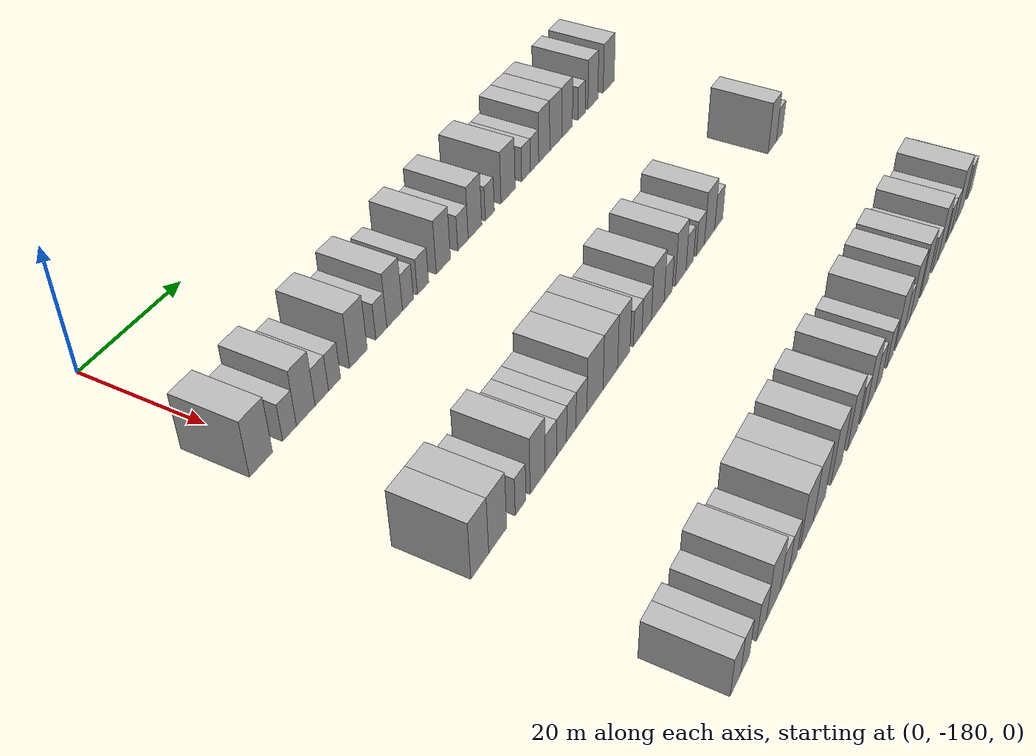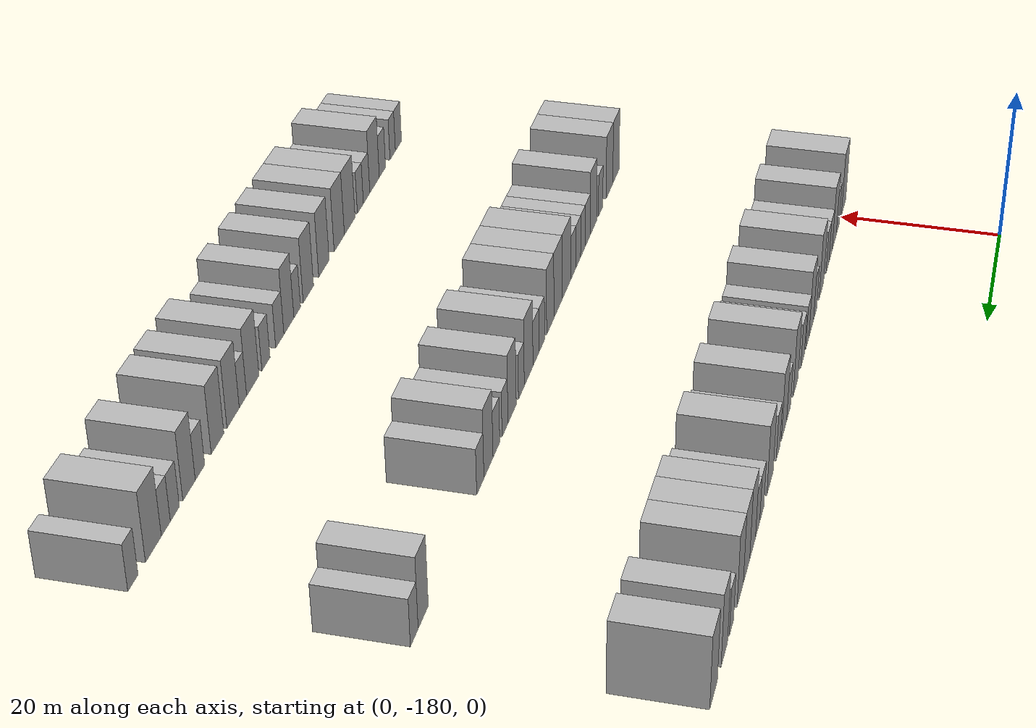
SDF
<sdf version="1.6">
 <world name="default">
  <model name="building_25">
   <static>1</static>
   <pose>25.0000 -182.3161 0 0.000000 0.000000 0.000000</pose>
   <link name="link">
    <pose>0 0 4.50 0 0 0</pose>
    <collision name="collision"><geometry><box><size>10.0000 4.4120 9.0000</size></box></geometry></collision>
    <visual name="visual">
     <cast_shadows>0</cast_shadows>
     <geometry><box><size>10.0000 4.4120 9.0000</size></box></geometry>
     <material>
      <script>
       <uri>model://HANNAS_wall/materials/scripts</uri>
       <uri>model://HANNAS_wall/materials/textures</uri>
       <name>vrc/HANNAS_wall</name>
      </script>
     </material>
    </visual>
   </link>
  </model>
  <model name="building_26">
   <static>1</static>
   <pose>25.0000 -176.7188 0 0.000000 0.000000 0.000000</pose>
   <link name="link">
    <pose>0 0 3.00 0 0 0</pose>
    <collision name="collision"><geometry><box><size>10.0000 2.7826 6.0000</size></box></geometry></collision>
    <visual name="visual">
     <cast_shadows>0</cast_shadows>
     <geometry><box><size>10.0000 2.7826 6.0000</size></box></geometry>
     <material>
      <script>
       <uri>model://HANNAS_wall/materials/scripts</uri>
       <uri>model://HANNAS_wall/materials/textures</uri>
       <name>vrc/HANNAS_wall</name>
      </script>
     </material>
    </visual>
   </link>
  </model>
  <model name="building_27">
   <static>1</static>
   <pose>25.0000 -173.3941 0 0.000000 0.000000 0.000000</pose>
   <link name="link">
    <pose>0 0 4.50 0 0 0</pose>
    <collision name="collision"><geometry><box><size>10.0000 3.8668 9.0000</size></box></geometry></collision>
    <visual name="visual">
     <cast_shadows>0</cast_shadows>
     <geometry><box><size>10.0000 3.8668 9.0000</size></box></geometry>
     <material>
      <script>
       <uri>model://HANNAS_wall/materials/scripts</uri>
       <uri>model://HANNAS_wall/materials/textures</uri>
       <name>vrc/HANNAS_wall</name>
      </script>
     </material>
    </visual>
   </link>
  </model>
  <model name="building_28">
   <static>1</static>
   <pose>25.0000 -170.0270 0 0.000000 0.000000 0.000000</pose>
   <link name="link">
    <pose>0 0 3.00 0 0 0</pose>
    <collision name="collision"><geometry><box><size>10.0000 2.8673 6.0000</size></box></geometry></collision>
    <visual name="visual">
     <cast_shadows>0</cast_shadows>
     <geometry><box><size>10.0000 2.8673 6.0000</size></box></geometry>
     <material>
      <script>
       <uri>model://HANNAS_wall/materials/scripts</uri>
       <uri>model://HANNAS_wall/materials/textures</uri>
       <name>vrc/HANNAS_wall</name>
      </script>
     </material>
    </visual>
   </link>
  </model>
  <model name="building_29">
   <static>1</static>
   <pose>25.0000 -167.2850 0 0.000000 0.000000 0.000000</pose>
   <link name="link">
    <pose>0 0 3.00 0 0 0</pose>
    <collision name="collision"><geometry><box><size>10.0000 2.6166 6.0000</size></box></geometry></collision>
    <visual name="visual">
     <cast_shadows>0</cast_shadows>
     <geometry><box><size>10.0000 2.6166 6.0000</size></box></geometry>
     <material>
      <script>
       <uri>model://HANNAS_wall/materials/scripts</uri>
       <uri>model://HANNAS_wall/materials/textures</uri>
       <name>vrc/HANNAS_wall</name>
      </script>
     </material>
    </visual>
   </link>
  </model>
  <model name="building_30">
   <static>1</static>
   <pose>25.0000 -161.9713 0 0.000000 0.000000 0.000000</pose>
   <link name="link">
    <pose>0 0 4.50 0 0 0</pose>
    <collision name="collision"><geometry><box><size>10.0000 4.0108 9.0000</size></box></geometry></collision>
    <visual name="visual">
     <cast_shadows>0</cast_shadows>
     <geometry><box><size>10.0000 4.0108 9.0000</size></box></geometry>
     <material>
      <script>
       <uri>model://HANNAS_wall/materials/scripts</uri>
       <uri>model://HANNAS_wall/materials/textures</uri>
       <name>vrc/HANNAS_wall</name>
      </script>
     </material>
    </visual>
   </link>
  </model>
  <model name="building_31">
   <static>1</static>
   <pose>25.0000 -156.6630 0 0.000000 0.000000 0.000000</pose>
   <link name="link">
    <pose>0 0 3.00 0 0 0</pose>
    <collision name="collision"><geometry><box><size>10.0000 2.6059 6.0000</size></box></geometry></collision>
    <visual name="visual">
     <cast_shadows>0</cast_shadows>
     <geometry><box><size>10.0000 2.6059 6.0000</size></box></geometry>
     <material>
      <script>
       <uri>model://HANNAS_wall/materials/scripts</uri>
       <uri>model://HANNAS_wall/materials/textures</uri>
       <name>vrc/HANNAS_wall</name>
      </script>
     </material>
    </visual>
   </link>
  </model>
  <model name="building_32">
   <static>1</static>
   <pose>25.0000 -153.4546 0 0.000000 0.000000 0.000000</pose>
   <link name="link">
    <pose>0 0 4.50 0 0 0</pose>
    <collision name="collision"><geometry><box><size>10.0000 3.8108 9.0000</size></box></geometry></collision>
    <visual name="visual">
     <cast_shadows>0</cast_shadows>
     <geometry><box><size>10.0000 3.8108 9.0000</size></box></geometry>
     <material>
      <script>
       <uri>model://HANNAS_wall/materials/scripts</uri>
       <uri>model://HANNAS_wall/materials/textures</uri>
       <name>vrc/HANNAS_wall</name>
      </script>
     </material>
    </visual>
   </link>
  </model>
  <model name="building_33">
   <static>1</static>
   <pose>25.0000 -150.1872 0 0.000000 0.000000 0.000000</pose>
   <link name="link">
    <pose>0 0 3.00 0 0 0</pose>
    <collision name="collision"><geometry><box><size>10.0000 2.7240 6.0000</size></box></geometry></collision>
    <visual name="visual">
     <cast_shadows>0</cast_shadows>
     <geometry><box><size>10.0000 2.7240 6.0000</size></box></geometry>
     <material>
      <script>
       <uri>model://HANNAS_wall/materials/scripts</uri>
       <uri>model://HANNAS_wall/materials/textures</uri>
       <name>vrc/HANNAS_wall</name>
      </script>
     </material>
    </visual>
   </link>
  </model>
  <model name="building_34">
   <static>1</static>
   <pose>25.0000 -146.3787 0 0.000000 0.000000 0.000000</pose>
   <link name="link">
    <pose>0 0 3.00 0 0 0</pose>
    <collision name="collision"><geometry><box><size>10.0000 2.8930 6.0000</size></box></geometry></collision>
    <visual name="visual">
     <cast_shadows>0</cast_shadows>
     <geometry><box><size>10.0000 2.8930 6.0000</size></box></geometry>
     <material>
      <script>
       <uri>model://HANNAS_wall/materials/scripts</uri>
       <uri>model://HANNAS_wall/materials/textures</uri>
       <name>vrc/HANNAS_wall</name>
      </script>
     </material>
    </visual>
   </link>
  </model>
  <model name="building_35">
   <static>1</static>
   <pose>25.0000 -141.0490 0 0.000000 0.000000 0.000000</pose>
   <link name="link">
    <pose>0 0 4.50 0 0 0</pose>
    <collision name="collision"><geometry><box><size>10.0000 3.7663 9.0000</size></box></geometry></collision>
    <visual name="visual">
     <cast_shadows>0</cast_shadows>
     <geometry><box><size>10.0000 3.7663 9.0000</size></box></geometry>
     <material>
      <script>
       <uri>model://HANNAS_wall/materials/scripts</uri>
       <uri>model://HANNAS_wall/materials/textures</uri>
       <name>vrc/HANNAS_wall</name>
      </script>
     </material>
    </visual>
   </link>
  </model>
  <model name="building_36">
   <static>1</static>
   <pose>25.0000 -135.7231 0 0.000000 0.000000 0.000000</pose>
   <link name="link">
    <pose>0 0 3.00 0 0 0</pose>
    <collision name="collision"><geometry><box><size>10.0000 2.8855 6.0000</size></box></geometry></collision>
    <visual name="visual">
     <cast_shadows>0</cast_shadows>
     <geometry><box><size>10.0000 2.8855 6.0000</size></box></geometry>
     <material>
      <script>
       <uri>model://HANNAS_wall/materials/scripts</uri>
       <uri>model://HANNAS_wall/materials/textures</uri>
       <name>vrc/HANNAS_wall</name>
      </script>
     </material>
    </visual>
   </link>
  </model>
  <model name="building_37">
   <static>1</static>
   <pose>25.0000 -132.3484 0 0.000000 0.000000 0.000000</pose>
   <link name="link">
    <pose>0 0 4.50 0 0 0</pose>
    <collision name="collision"><geometry><box><size>10.0000 3.8639 9.0000</size></box></geometry></collision>
    <visual name="visual">
     <cast_shadows>0</cast_shadows>
     <geometry><box><size>10.0000 3.8639 9.0000</size></box></geometry>
     <material>
      <script>
       <uri>model://HANNAS_wall/materials/scripts</uri>
       <uri>model://HANNAS_wall/materials/textures</uri>
       <name>vrc/HANNAS_wall</name>
      </script>
     </material>
    </visual>
   </link>
  </model>
  <model name="building_38">
   <static>1</static>
   <pose>25.0000 -128.0818 0 0.000000 0.000000 0.000000</pose>
   <link name="link">
    <pose>0 0 3.00 0 0 0</pose>
    <collision name="collision"><geometry><box><size>10.0000 2.6695 6.0000</size></box></geometry></collision>
    <visual name="visual">
     <cast_shadows>0</cast_shadows>
     <geometry><box><size>10.0000 2.6695 6.0000</size></box></geometry>
     <material>
      <script>
       <uri>model://HANNAS_wall/materials/scripts</uri>
       <uri>model://HANNAS_wall/materials/textures</uri>
       <name>vrc/HANNAS_wall</name>
      </script>
     </material>
    </visual>
   </link>
  </model>
  <model name="building_39">
   <static>1</static>
   <pose>25.0000 -122.6001 0 0.000000 0.000000 0.000000</pose>
   <link name="link">
    <pose>0 0 4.50 0 0 0</pose>
    <collision name="collision"><geometry><box><size>10.0000 4.2939 9.0000</size></box></geometry></collision>
    <visual name="visual">
     <cast_shadows>0</cast_shadows>
     <geometry><box><size>10.0000 4.2939 9.0000</size></box></geometry>
     <material>
      <script>
       <uri>model://HANNAS_wall/materials/scripts</uri>
       <uri>model://HANNAS_wall/materials/textures</uri>
       <name>vrc/HANNAS_wall</name>
      </script>
     </material>
    </visual>
   </link>
  </model>
  <model name="building_40">
   <static>1</static>
   <pose>25.0000 -117.0866 0 0.000000 0.000000 0.000000</pose>
   <link name="link">
    <pose>0 0 3.00 0 0 0</pose>
    <collision name="collision"><geometry><box><size>10.0000 2.7331 6.0000</size></box></geometry></collision>
    <visual name="visual">
     <cast_shadows>0</cast_shadows>
     <geometry><box><size>10.0000 2.7331 6.0000</size></box></geometry>
     <material>
      <script>
       <uri>model://HANNAS_wall/materials/scripts</uri>
       <uri>model://HANNAS_wall/materials/textures</uri>
       <name>vrc/HANNAS_wall</name>
      </script>
     </material>
    </visual>
   </link>
  </model>
  <model name="building_41">
   <static>1</static>
   <pose>25.0000 -114.3756 0 0.000000 0.000000 0.000000</pose>
   <link name="link">
    <pose>0 0 3.00 0 0 0</pose>
    <collision name="collision"><geometry><box><size>10.0000 2.6889 6.0000</size></box></geometry></collision>
    <visual name="visual">
     <cast_shadows>0</cast_shadows>
     <geometry><box><size>10.0000 2.6889 6.0000</size></box></geometry>
     <material>
      <script>
       <uri>model://HANNAS_wall/materials/scripts</uri>
       <uri>model://HANNAS_wall/materials/textures</uri>
       <name>vrc/HANNAS_wall</name>
      </script>
     </material>
    </visual>
   </link>
  </model>
  <model name="building_42">
   <static>1</static>
   <pose>25.0000 -111.2043 0 0.000000 0.000000 0.000000</pose>
   <link name="link">
    <pose>0 0 4.50 0 0 0</pose>
    <collision name="collision"><geometry><box><size>10.0000 3.6537 9.0000</size></box></geometry></collision>
    <visual name="visual">
     <cast_shadows>0</cast_shadows>
     <geometry><box><size>10.0000 3.6537 9.0000</size></box></geometry>
     <material>
      <script>
       <uri>model://HANNAS_wall/materials/scripts</uri>
       <uri>model://HANNAS_wall/materials/textures</uri>
       <name>vrc/HANNAS_wall</name>
      </script>
     </material>
    </visual>
   </link>
  </model>
  <model name="building_43">
   <static>1</static>
   <pose>25.0000 -107.4079 0 0.000000 0.000000 0.000000</pose>
   <link name="link">
    <pose>0 0 4.50 0 0 0</pose>
    <collision name="collision"><geometry><box><size>10.0000 3.9390 9.0000</size></box></geometry></collision>
    <visual name="visual">
     <cast_shadows>0</cast_shadows>
     <geometry><box><size>10.0000 3.9390 9.0000</size></box></geometry>
     <material>
      <script>
       <uri>model://HANNAS_wall/materials/scripts</uri>
       <uri>model://HANNAS_wall/materials/textures</uri>
       <name>vrc/HANNAS_wall</name>
      </script>
     </material>
    </visual>
   </link>
  </model>
  <model name="building_44">
   <static>1</static>
   <pose>25.0000 -103.5517 0 0.000000 0.000000 0.000000</pose>
   <link name="link">
    <pose>0 0 4.50 0 0 0</pose>
    <collision name="collision"><geometry><box><size>10.0000 3.7735 9.0000</size></box></geometry></collision>
    <visual name="visual">
     <cast_shadows>0</cast_shadows>
     <geometry><box><size>10.0000 3.7735 9.0000</size></box></geometry>
     <material>
      <script>
       <uri>model://HANNAS_wall/materials/scripts</uri>
       <uri>model://HANNAS_wall/materials/textures</uri>
       <name>vrc/HANNAS_wall</name>
      </script>
     </material>
    </visual>
   </link>
  </model>
  <model name="building_45">
   <static>1</static>
   <pose>25.0000 -98.4162 0 0.000000 0.000000 0.000000</pose>
   <link name="link">
    <pose>0 0 3.00 0 0 0</pose>
    <collision name="collision"><geometry><box><size>10.0000 2.4974 6.0000</size></box></geometry></collision>
    <visual name="visual">
     <cast_shadows>0</cast_shadows>
     <geometry><box><size>10.0000 2.4974 6.0000</size></box></geometry>
     <material>
      <script>
       <uri>model://HANNAS_wall/materials/scripts</uri>
       <uri>model://HANNAS_wall/materials/textures</uri>
       <name>vrc/HANNAS_wall</name>
      </script>
     </material>
    </visual>
   </link>
  </model>
  <model name="building_46">
   <static>1</static>
   <pose>25.0000 -94.3609 0 0.000000 0.000000 0.000000</pose>
   <link name="link">
    <pose>0 0 4.50 0 0 0</pose>
    <collision name="collision"><geometry><box><size>10.0000 3.6133 9.0000</size></box></geometry></collision>
    <visual name="visual">
     <cast_shadows>0</cast_shadows>
     <geometry><box><size>10.0000 3.6133 9.0000</size></box></geometry>
     <material>
      <script>
       <uri>model://HANNAS_wall/materials/scripts</uri>
       <uri>model://HANNAS_wall/materials/textures</uri>
       <name>vrc/HANNAS_wall</name>
      </script>
     </material>
    </visual>
   </link>
  </model>
  <model name="building_47">
   <static>1</static>
   <pose>25.0000 -88.4850 0 0.000000 0.000000 0.000000</pose>
   <link name="link">
    <pose>0 0 4.50 0 0 0</pose>
    <collision name="collision"><geometry><box><size>10.0000 4.1384 9.0000</size></box></geometry></collision>
    <visual name="visual">
     <cast_shadows>0</cast_shadows>
     <geometry><box><size>10.0000 4.1384 9.0000</size></box></geometry>
     <material>
      <script>
       <uri>model://HANNAS_wall/materials/scripts</uri>
       <uri>model://HANNAS_wall/materials/textures</uri>
       <name>vrc/HANNAS_wall</name>
      </script>
     </material>
    </visual>
   </link>
  </model>
  <model name="building_157">
   <static>1</static>
   <pose>55.0000 -183.6602 0 0.000000 0.000000 0.000000</pose>
   <link name="link">
    <pose>0 0 4.50 0 0 0</pose>
    <collision name="collision"><geometry><box><size>10.0000 3.9089 9.0000</size></box></geometry></collision>
    <visual name="visual">
     <cast_shadows>0</cast_shadows>
     <geometry><box><size>10.0000 3.9089 9.0000</size></box></geometry>
     <material>
      <script>
       <uri>model://HANNAS_wall/materials/scripts</uri>
       <uri>model://HANNAS_wall/materials/textures</uri>
       <name>vrc/HANNAS_wall</name>
      </script>
     </material>
    </visual>
   </link>
  </model>
  <model name="building_158">
   <static>1</static>
   <pose>55.0000 -179.6854 0 0.000000 0.000000 0.000000</pose>
   <link name="link">
    <pose>0 0 4.50 0 0 0</pose>
    <collision name="collision"><geometry><box><size>10.0000 4.0408 9.0000</size></box></geometry></collision>
    <visual name="visual">
     <cast_shadows>0</cast_shadows>
     <geometry><box><size>10.0000 4.0408 9.0000</size></box></geometry>
     <material>
      <script>
       <uri>model://HANNAS_wall/materials/scripts</uri>
       <uri>model://HANNAS_wall/materials/textures</uri>
       <name>vrc/HANNAS_wall</name>
      </script>
     </material>
    </visual>
   </link>
  </model>
  <model name="building_159">
   <static>1</static>
   <pose>55.0000 -174.3899 0 0.000000 0.000000 0.000000</pose>
   <link name="link">
    <pose>0 0 3.00 0 0 0</pose>
    <collision name="collision"><geometry><box><size>10.0000 2.5501 6.0000</size></box></geometry></collision>
    <visual name="visual">
     <cast_shadows>0</cast_shadows>
     <geometry><box><size>10.0000 2.5501 6.0000</size></box></geometry>
     <material>
      <script>
       <uri>model://HANNAS_wall/materials/scripts</uri>
       <uri>model://HANNAS_wall/materials/textures</uri>
       <name>vrc/HANNAS_wall</name>
      </script>
     </material>
    </visual>
   </link>
  </model>
  <model name="building_160">
   <static>1</static>
   <pose>55.0000 -170.2668 0 0.000000 0.000000 0.000000</pose>
   <link name="link">
    <pose>0 0 4.50 0 0 0</pose>
    <collision name="collision"><geometry><box><size>10.0000 3.6962 9.0000</size></box></geometry></collision>
    <visual name="visual">
     <cast_shadows>0</cast_shadows>
     <geometry><box><size>10.0000 3.6962 9.0000</size></box></geometry>
     <material>
      <script>
       <uri>model://HANNAS_wall/materials/scripts</uri>
       <uri>model://HANNAS_wall/materials/textures</uri>
       <name>vrc/HANNAS_wall</name>
      </script>
     </material>
    </visual>
   </link>
  </model>
  <model name="building_161">
   <static>1</static>
   <pose>55.0000 -166.9541 0 0.000000 0.000000 0.000000</pose>
   <link name="link">
    <pose>0 0 3.00 0 0 0</pose>
    <collision name="collision"><geometry><box><size>10.0000 2.9292 6.0000</size></box></geometry></collision>
    <visual name="visual">
     <cast_shadows>0</cast_shadows>
     <geometry><box><size>10.0000 2.9292 6.0000</size></box></geometry>
     <material>
      <script>
       <uri>model://HANNAS_wall/materials/scripts</uri>
       <uri>model://HANNAS_wall/materials/textures</uri>
       <name>vrc/HANNAS_wall</name>
      </script>
     </material>
    </visual>
   </link>
  </model>
  <model name="building_162">
   <static>1</static>
   <pose>55.0000 -164.2216 0 0.000000 0.000000 0.000000</pose>
   <link name="link">
    <pose>0 0 3.00 0 0 0</pose>
    <collision name="collision"><geometry><box><size>10.0000 2.5359 6.0000</size></box></geometry></collision>
    <visual name="visual">
     <cast_shadows>0</cast_shadows>
     <geometry><box><size>10.0000 2.5359 6.0000</size></box></geometry>
     <material>
      <script>
       <uri>model://HANNAS_wall/materials/scripts</uri>
       <uri>model://HANNAS_wall/materials/textures</uri>
       <name>vrc/HANNAS_wall</name>
      </script>
     </material>
    </visual>
   </link>
  </model>
  <model name="building_163">
   <static>1</static>
   <pose>55.0000 -161.7078 0 0.000000 0.000000 0.000000</pose>
   <link name="link">
    <pose>0 0 3.00 0 0 0</pose>
    <collision name="collision"><geometry><box><size>10.0000 2.4917 6.0000</size></box></geometry></collision>
    <visual name="visual">
     <cast_shadows>0</cast_shadows>
     <geometry><box><size>10.0000 2.4917 6.0000</size></box></geometry>
     <material>
      <script>
       <uri>model://HANNAS_wall/materials/scripts</uri>
       <uri>model://HANNAS_wall/materials/textures</uri>
       <name>vrc/HANNAS_wall</name>
      </script>
     </material>
    </visual>
   </link>
  </model>
  <model name="building_164">
   <static>1</static>
   <pose>55.0000 -158.9824 0 0.000000 0.000000 0.000000</pose>
   <link name="link">
    <pose>0 0 3.00 0 0 0</pose>
    <collision name="collision"><geometry><box><size>10.0000 2.9591 6.0000</size></box></geometry></collision>
    <visual name="visual">
     <cast_shadows>0</cast_shadows>
     <geometry><box><size>10.0000 2.9591 6.0000</size></box></geometry>
     <material>
      <script>
       <uri>model://HANNAS_wall/materials/scripts</uri>
       <uri>model://HANNAS_wall/materials/textures</uri>
       <name>vrc/HANNAS_wall</name>
      </script>
     </material>
    </visual>
   </link>
  </model>
  <model name="building_165">
   <static>1</static>
   <pose>55.0000 -155.2646 0 0.000000 0.000000 0.000000</pose>
   <link name="link">
    <pose>0 0 4.50 0 0 0</pose>
    <collision name="collision"><geometry><box><size>10.0000 4.4765 9.0000</size></box></geometry></collision>
    <visual name="visual">
     <cast_shadows>0</cast_shadows>
     <geometry><box><size>10.0000 4.4765 9.0000</size></box></geometry>
     <material>
      <script>
       <uri>model://HANNAS_wall/materials/scripts</uri>
       <uri>model://HANNAS_wall/materials/textures</uri>
       <name>vrc/HANNAS_wall</name>
      </script>
     </material>
    </visual>
   </link>
  </model>
  <model name="building_166">
   <static>1</static>
   <pose>55.0000 -150.9279 0 0.000000 0.000000 0.000000</pose>
   <link name="link">
    <pose>0 0 4.50 0 0 0</pose>
    <collision name="collision"><geometry><box><size>10.0000 4.1971 9.0000</size></box></geometry></collision>
    <visual name="visual">
     <cast_shadows>0</cast_shadows>
     <geometry><box><size>10.0000 4.1971 9.0000</size></box></geometry>
     <material>
      <script>
       <uri>model://HANNAS_wall/materials/scripts</uri>
       <uri>model://HANNAS_wall/materials/textures</uri>
       <name>vrc/HANNAS_wall</name>
      </script>
     </material>
    </visual>
   </link>
  </model>
  <model name="building_167">
   <static>1</static>
   <pose>55.0000 -146.9853 0 0.000000 0.000000 0.000000</pose>
   <link name="link">
    <pose>0 0 4.50 0 0 0</pose>
    <collision name="collision"><geometry><box><size>10.0000 3.6880 9.0000</size></box></geometry></collision>
    <visual name="visual">
     <cast_shadows>0</cast_shadows>
     <geometry><box><size>10.0000 3.6880 9.0000</size></box></geometry>
     <material>
      <script>
       <uri>model://HANNAS_wall/materials/scripts</uri>
       <uri>model://HANNAS_wall/materials/textures</uri>
       <name>vrc/HANNAS_wall</name>
      </script>
     </material>
    </visual>
   </link>
  </model>
  <model name="building_168">
   <static>1</static>
   <pose>55.0000 -142.7924 0 0.000000 0.000000 0.000000</pose>
   <link name="link">
    <pose>0 0 3.00 0 0 0</pose>
    <collision name="collision"><geometry><box><size>10.0000 2.6979 6.0000</size></box></geometry></collision>
    <visual name="visual">
     <cast_shadows>0</cast_shadows>
     <geometry><box><size>10.0000 2.6979 6.0000</size></box></geometry>
     <material>
      <script>
       <uri>model://HANNAS_wall/materials/scripts</uri>
       <uri>model://HANNAS_wall/materials/textures</uri>
       <name>vrc/HANNAS_wall</name>
      </script>
     </material>
    </visual>
   </link>
  </model>
  <model name="building_169">
   <static>1</static>
   <pose>55.0000 -139.9579 0 0.000000 0.000000 0.000000</pose>
   <link name="link">
    <pose>0 0 3.00 0 0 0</pose>
    <collision name="collision"><geometry><box><size>10.0000 2.9709 6.0000</size></box></geometry></collision>
    <visual name="visual">
     <cast_shadows>0</cast_shadows>
     <geometry><box><size>10.0000 2.9709 6.0000</size></box></geometry>
     <material>
      <script>
       <uri>model://HANNAS_wall/materials/scripts</uri>
       <uri>model://HANNAS_wall/materials/textures</uri>
       <name>vrc/HANNAS_wall</name>
      </script>
     </material>
    </visual>
   </link>
  </model>
  <model name="building_170">
   <static>1</static>
   <pose>55.0000 -136.4095 0 0.000000 0.000000 0.000000</pose>
   <link name="link">
    <pose>0 0 4.50 0 0 0</pose>
    <collision name="collision"><geometry><box><size>10.0000 4.1260 9.0000</size></box></geometry></collision>
    <visual name="visual">
     <cast_shadows>0</cast_shadows>
     <geometry><box><size>10.0000 4.1260 9.0000</size></box></geometry>
     <material>
      <script>
       <uri>model://HANNAS_wall/materials/scripts</uri>
       <uri>model://HANNAS_wall/materials/textures</uri>
       <name>vrc/HANNAS_wall</name>
      </script>
     </material>
    </visual>
   </link>
  </model>
  <model name="building_171">
   <static>1</static>
   <pose>55.0000 -132.9893 0 0.000000 0.000000 0.000000</pose>
   <link name="link">
    <pose>0 0 3.00 0 0 0</pose>
    <collision name="collision"><geometry><box><size>10.0000 2.7144 6.0000</size></box></geometry></collision>
    <visual name="visual">
     <cast_shadows>0</cast_shadows>
     <geometry><box><size>10.0000 2.7144 6.0000</size></box></geometry>
     <material>
      <script>
       <uri>model://HANNAS_wall/materials/scripts</uri>
       <uri>model://HANNAS_wall/materials/textures</uri>
       <name>vrc/HANNAS_wall</name>
      </script>
     </material>
    </visual>
   </link>
  </model>
  <model name="building_172">
   <static>1</static>
   <pose>55.0000 -128.7719 0 0.000000 0.000000 0.000000</pose>
   <link name="link">
    <pose>0 0 4.50 0 0 0</pose>
    <collision name="collision"><geometry><box><size>10.0000 3.7205 9.0000</size></box></geometry></collision>
    <visual name="visual">
     <cast_shadows>0</cast_shadows>
     <geometry><box><size>10.0000 3.7205 9.0000</size></box></geometry>
     <material>
      <script>
       <uri>model://HANNAS_wall/materials/scripts</uri>
       <uri>model://HANNAS_wall/materials/textures</uri>
       <name>vrc/HANNAS_wall</name>
      </script>
     </material>
    </visual>
   </link>
  </model>
  <model name="building_173">
   <static>1</static>
   <pose>55.0000 -125.5892 0 0.000000 0.000000 0.000000</pose>
   <link name="link">
    <pose>0 0 3.00 0 0 0</pose>
    <collision name="collision"><geometry><box><size>10.0000 2.6448 6.0000</size></box></geometry></collision>
    <visual name="visual">
     <cast_shadows>0</cast_shadows>
     <geometry><box><size>10.0000 2.6448 6.0000</size></box></geometry>
     <material>
      <script>
       <uri>model://HANNAS_wall/materials/scripts</uri>
       <uri>model://HANNAS_wall/materials/textures</uri>
       <name>vrc/HANNAS_wall</name>
      </script>
     </material>
    </visual>
   </link>
  </model>
  <model name="building_174">
   <static>1</static>
   <pose>55.0000 -121.8149 0 0.000000 0.000000 0.000000</pose>
   <link name="link">
    <pose>0 0 3.00 0 0 0</pose>
    <collision name="collision"><geometry><box><size>10.0000 2.9039 6.0000</size></box></geometry></collision>
    <visual name="visual">
     <cast_shadows>0</cast_shadows>
     <geometry><box><size>10.0000 2.9039 6.0000</size></box></geometry>
     <material>
      <script>
       <uri>model://HANNAS_wall/materials/scripts</uri>
       <uri>model://HANNAS_wall/materials/textures</uri>
       <name>vrc/HANNAS_wall</name>
      </script>
     </material>
    </visual>
   </link>
  </model>
  <model name="building_175">
   <static>1</static>
   <pose>55.0000 -118.4434 0 0.000000 0.000000 0.000000</pose>
   <link name="link">
    <pose>0 0 4.50 0 0 0</pose>
    <collision name="collision"><geometry><box><size>10.0000 3.8390 9.0000</size></box></geometry></collision>
    <visual name="visual">
     <cast_shadows>0</cast_shadows>
     <geometry><box><size>10.0000 3.8390 9.0000</size></box></geometry>
     <material>
      <script>
       <uri>model://HANNAS_wall/materials/scripts</uri>
       <uri>model://HANNAS_wall/materials/textures</uri>
       <name>vrc/HANNAS_wall</name>
      </script>
     </material>
    </visual>
   </link>
  </model>
  <model name="building_176">
   <static>1</static>
   <pose>55.0000 -115.0276 0 0.000000 0.000000 0.000000</pose>
   <link name="link">
    <pose>0 0 3.00 0 0 0</pose>
    <collision name="collision"><geometry><box><size>10.0000 2.9926 6.0000</size></box></geometry></collision>
    <visual name="visual">
     <cast_shadows>0</cast_shadows>
     <geometry><box><size>10.0000 2.9926 6.0000</size></box></geometry>
     <material>
      <script>
       <uri>model://HANNAS_wall/materials/scripts</uri>
       <uri>model://HANNAS_wall/materials/textures</uri>
       <name>vrc/HANNAS_wall</name>
      </script>
     </material>
    </visual>
   </link>
  </model>
  <model name="building_177">
   <static>1</static>
   <pose>55.0000 -93.1078 0 0.000000 0.000000 0.000000</pose>
   <link name="link">
    <pose>0 0 4.50 0 0 0</pose>
    <collision name="collision"><geometry><box><size>10.0000 3.6157 9.0000</size></box></geometry></collision>
    <visual name="visual">
     <cast_shadows>0</cast_shadows>
     <geometry><box><size>10.0000 3.6157 9.0000</size></box></geometry>
     <material>
      <script>
       <uri>model://HANNAS_wall/materials/scripts</uri>
       <uri>model://HANNAS_wall/materials/textures</uri>
       <name>vrc/HANNAS_wall</name>
      </script>
     </material>
    </visual>
   </link>
  </model>
  <model name="building_178">
   <static>1</static>
   <pose>55.0000 -89.9440 0 0.000000 0.000000 0.000000</pose>
   <link name="link">
    <pose>0 0 3.00 0 0 0</pose>
    <collision name="collision"><geometry><box><size>10.0000 2.7118 6.0000</size></box></geometry></collision>
    <visual name="visual">
     <cast_shadows>0</cast_shadows>
     <geometry><box><size>10.0000 2.7118 6.0000</size></box></geometry>
     <material>
      <script>
       <uri>model://HANNAS_wall/materials/scripts</uri>
       <uri>model://HANNAS_wall/materials/textures</uri>
       <name>vrc/HANNAS_wall</name>
      </script>
     </material>
    </visual>
   </link>
  </model>
  <model name="building_292">
   <static>1</static>
   <pose>85.0000 -185.0631 0 0.000000 0.000000 0.000000</pose>
   <link name="link">
    <pose>0 0 3.00 0 0 0</pose>
    <collision name="collision"><geometry><box><size>10.0000 2.8352 6.0000</size></box></geometry></collision>
    <visual name="visual">
     <cast_shadows>0</cast_shadows>
     <geometry><box><size>10.0000 2.8352 6.0000</size></box></geometry>
     <material>
      <script>
       <uri>model://HANNAS_wall/materials/scripts</uri>
       <uri>model://HANNAS_wall/materials/textures</uri>
       <name>vrc/HANNAS_wall</name>
      </script>
     </material>
    </visual>
   </link>
  </model>
  <model name="building_293">
   <static>1</static>
   <pose>85.0000 -182.4044 0 0.000000 0.000000 0.000000</pose>
   <link name="link">
    <pose>0 0 3.00 0 0 0</pose>
    <collision name="collision"><geometry><box><size>10.0000 2.4821 6.0000</size></box></geometry></collision>
    <visual name="visual">
     <cast_shadows>0</cast_shadows>
     <geometry><box><size>10.0000 2.4821 6.0000</size></box></geometry>
     <material>
      <script>
       <uri>model://HANNAS_wall/materials/scripts</uri>
       <uri>model://HANNAS_wall/materials/textures</uri>
       <name>vrc/HANNAS_wall</name>
      </script>
     </material>
    </visual>
   </link>
  </model>
  <model name="building_294">
   <static>1</static>
   <pose>85.0000 -177.7649 0 0.000000 0.000000 0.000000</pose>
   <link name="link">
    <pose>0 0 3.00 0 0 0</pose>
    <collision name="collision"><geometry><box><size>10.0000 2.7969 6.0000</size></box></geometry></collision>
    <visual name="visual">
     <cast_shadows>0</cast_shadows>
     <geometry><box><size>10.0000 2.7969 6.0000</size></box></geometry>
     <material>
      <script>
       <uri>model://HANNAS_wall/materials/scripts</uri>
       <uri>model://HANNAS_wall/materials/textures</uri>
       <name>vrc/HANNAS_wall</name>
      </script>
     </material>
    </visual>
   </link>
  </model>
  <model name="building_295">
   <static>1</static>
   <pose>85.0000 -174.2799 0 0.000000 0.000000 0.000000</pose>
   <link name="link">
    <pose>0 0 4.50 0 0 0</pose>
    <collision name="collision"><geometry><box><size>10.0000 4.1731 9.0000</size></box></geometry></collision>
    <visual name="visual">
     <cast_shadows>0</cast_shadows>
     <geometry><box><size>10.0000 4.1731 9.0000</size></box></geometry>
     <material>
      <script>
       <uri>model://HANNAS_wall/materials/scripts</uri>
       <uri>model://HANNAS_wall/materials/textures</uri>
       <name>vrc/HANNAS_wall</name>
      </script>
     </material>
    </visual>
   </link>
  </model>
  <model name="building_296">
   <static>1</static>
   <pose>85.0000 -170.7993 0 0.000000 0.000000 0.000000</pose>
   <link name="link">
    <pose>0 0 3.00 0 0 0</pose>
    <collision name="collision"><geometry><box><size>10.0000 2.7880 6.0000</size></box></geometry></collision>
    <visual name="visual">
     <cast_shadows>0</cast_shadows>
     <geometry><box><size>10.0000 2.7880 6.0000</size></box></geometry>
     <material>
      <script>
       <uri>model://HANNAS_wall/materials/scripts</uri>
       <uri>model://HANNAS_wall/materials/textures</uri>
       <name>vrc/HANNAS_wall</name>
      </script>
     </material>
    </visual>
   </link>
  </model>
  <model name="building_297">
   <static>1</static>
   <pose>85.0000 -168.1282 0 0.000000 0.000000 0.000000</pose>
   <link name="link">
    <pose>0 0 3.00 0 0 0</pose>
    <collision name="collision"><geometry><box><size>10.0000 2.5543 6.0000</size></box></geometry></collision>
    <visual name="visual">
     <cast_shadows>0</cast_shadows>
     <geometry><box><size>10.0000 2.5543 6.0000</size></box></geometry>
     <material>
      <script>
       <uri>model://HANNAS_wall/materials/scripts</uri>
       <uri>model://HANNAS_wall/materials/textures</uri>
       <name>vrc/HANNAS_wall</name>
      </script>
     </material>
    </visual>
   </link>
  </model>
  <model name="building_298">
   <static>1</static>
   <pose>85.0000 -163.6507 0 0.000000 0.000000 0.000000</pose>
   <link name="link">
    <pose>0 0 4.50 0 0 0</pose>
    <collision name="collision"><geometry><box><size>10.0000 4.4007 9.0000</size></box></geometry></collision>
    <visual name="visual">
     <cast_shadows>0</cast_shadows>
     <geometry><box><size>10.0000 4.4007 9.0000</size></box></geometry>
     <material>
      <script>
       <uri>model://HANNAS_wall/materials/scripts</uri>
       <uri>model://HANNAS_wall/materials/textures</uri>
       <name>vrc/HANNAS_wall</name>
      </script>
     </material>
    </visual>
   </link>
  </model>
  <model name="building_299">
   <static>1</static>
   <pose>85.0000 -159.3759 0 0.000000 0.000000 0.000000</pose>
   <link name="link">
    <pose>0 0 4.50 0 0 0</pose>
    <collision name="collision"><geometry><box><size>10.0000 4.1487 9.0000</size></box></geometry></collision>
    <visual name="visual">
     <cast_shadows>0</cast_shadows>
     <geometry><box><size>10.0000 4.1487 9.0000</size></box></geometry>
     <material>
      <script>
       <uri>model://HANNAS_wall/materials/scripts</uri>
       <uri>model://HANNAS_wall/materials/textures</uri>
       <name>vrc/HANNAS_wall</name>
      </script>
     </material>
    </visual>
   </link>
  </model>
  <model name="building_300">
   <static>1</static>
   <pose>85.0000 -153.2603 0 0.000000 0.000000 0.000000</pose>
   <link name="link">
    <pose>0 0 4.50 0 0 0</pose>
    <collision name="collision"><geometry><box><size>10.0000 4.0827 9.0000</size></box></geometry></collision>
    <visual name="visual">
     <cast_shadows>0</cast_shadows>
     <geometry><box><size>10.0000 4.0827 9.0000</size></box></geometry>
     <material>
      <script>
       <uri>model://HANNAS_wall/materials/scripts</uri>
       <uri>model://HANNAS_wall/materials/textures</uri>
       <name>vrc/HANNAS_wall</name>
      </script>
     </material>
    </visual>
   </link>
  </model>
  <model name="building_301">
   <static>1</static>
   <pose>85.0000 -147.2596 0 0.000000 0.000000 0.000000</pose>
   <link name="link">
    <pose>0 0 4.50 0 0 0</pose>
    <collision name="collision"><geometry><box><size>10.0000 3.9188 9.0000</size></box></geometry></collision>
    <visual name="visual">
     <cast_shadows>0</cast_shadows>
     <geometry><box><size>10.0000 3.9188 9.0000</size></box></geometry>
     <material>
      <script>
       <uri>model://HANNAS_wall/materials/scripts</uri>
       <uri>model://HANNAS_wall/materials/textures</uri>
       <name>vrc/HANNAS_wall</name>
      </script>
     </material>
    </visual>
   </link>
  </model>
  <model name="building_302">
   <static>1</static>
   <pose>85.0000 -143.0858 0 0.000000 0.000000 0.000000</pose>
   <link name="link">
    <pose>0 0 3.00 0 0 0</pose>
    <collision name="collision"><geometry><box><size>10.0000 2.4287 6.0000</size></box></geometry></collision>
    <visual name="visual">
     <cast_shadows>0</cast_shadows>
     <geometry><box><size>10.0000 2.4287 6.0000</size></box></geometry>
     <material>
      <script>
       <uri>model://HANNAS_wall/materials/scripts</uri>
       <uri>model://HANNAS_wall/materials/textures</uri>
       <name>vrc/HANNAS_wall</name>
      </script>
     </material>
    </visual>
   </link>
  </model>
  <model name="building_303">
   <static>1</static>
   <pose>85.0000 -140.0541 0 0.000000 0.000000 0.000000</pose>
   <link name="link">
    <pose>0 0 4.50 0 0 0</pose>
    <collision name="collision"><geometry><box><size>10.0000 3.6347 9.0000</size></box></geometry></collision>
    <visual name="visual">
     <cast_shadows>0</cast_shadows>
     <geometry><box><size>10.0000 3.6347 9.0000</size></box></geometry>
     <material>
      <script>
       <uri>model://HANNAS_wall/materials/scripts</uri>
       <uri>model://HANNAS_wall/materials/textures</uri>
       <name>vrc/HANNAS_wall</name>
      </script>
     </material>
    </visual>
   </link>
  </model>
  <model name="building_304">
   <static>1</static>
   <pose>85.0000 -136.7738 0 0.000000 0.000000 0.000000</pose>
   <link name="link">
    <pose>0 0 3.00 0 0 0</pose>
    <collision name="collision"><geometry><box><size>10.0000 2.9258 6.0000</size></box></geometry></collision>
    <visual name="visual">
     <cast_shadows>0</cast_shadows>
     <geometry><box><size>10.0000 2.9258 6.0000</size></box></geometry>
     <material>
      <script>
       <uri>model://HANNAS_wall/materials/scripts</uri>
       <uri>model://HANNAS_wall/materials/textures</uri>
       <name>vrc/HANNAS_wall</name>
      </script>
     </material>
    </visual>
   </link>
  </model>
  <model name="building_305">
   <static>1</static>
   <pose>85.0000 -131.9158 0 0.000000 0.000000 0.000000</pose>
   <link name="link">
    <pose>0 0 3.00 0 0 0</pose>
    <collision name="collision"><geometry><box><size>10.0000 2.7904 6.0000</size></box></geometry></collision>
    <visual name="visual">
     <cast_shadows>0</cast_shadows>
     <geometry><box><size>10.0000 2.7904 6.0000</size></box></geometry>
     <material>
      <script>
       <uri>model://HANNAS_wall/materials/scripts</uri>
       <uri>model://HANNAS_wall/materials/textures</uri>
       <name>vrc/HANNAS_wall</name>
      </script>
     </material>
    </visual>
   </link>
  </model>
  <model name="building_306">
   <static>1</static>
   <pose>85.0000 -127.4369 0 0.000000 0.000000 0.000000</pose>
   <link name="link">
    <pose>0 0 4.50 0 0 0</pose>
    <collision name="collision"><geometry><box><size>10.0000 4.1673 9.0000</size></box></geometry></collision>
    <visual name="visual">
     <cast_shadows>0</cast_shadows>
     <geometry><box><size>10.0000 4.1673 9.0000</size></box></geometry>
     <material>
      <script>
       <uri>model://HANNAS_wall/materials/scripts</uri>
       <uri>model://HANNAS_wall/materials/textures</uri>
       <name>vrc/HANNAS_wall</name>
      </script>
     </material>
    </visual>
   </link>
  </model>
  <model name="building_307">
   <static>1</static>
   <pose>85.0000 -124.1355 0 0.000000 0.000000 0.000000</pose>
   <link name="link">
    <pose>0 0 3.00 0 0 0</pose>
    <collision name="collision"><geometry><box><size>10.0000 2.4355 6.0000</size></box></geometry></collision>
    <visual name="visual">
     <cast_shadows>0</cast_shadows>
     <geometry><box><size>10.0000 2.4355 6.0000</size></box></geometry>
     <material>
      <script>
       <uri>model://HANNAS_wall/materials/scripts</uri>
       <uri>model://HANNAS_wall/materials/textures</uri>
       <name>vrc/HANNAS_wall</name>
      </script>
     </material>
    </visual>
   </link>
  </model>
  <model name="building_308">
   <static>1</static>
   <pose>85.0000 -120.9359 0 0.000000 0.000000 0.000000</pose>
   <link name="link">
    <pose>0 0 4.50 0 0 0</pose>
    <collision name="collision"><geometry><box><size>10.0000 3.9636 9.0000</size></box></geometry></collision>
    <visual name="visual">
     <cast_shadows>0</cast_shadows>
     <geometry><box><size>10.0000 3.9636 9.0000</size></box></geometry>
     <material>
      <script>
       <uri>model://HANNAS_wall/materials/scripts</uri>
       <uri>model://HANNAS_wall/materials/textures</uri>
       <name>vrc/HANNAS_wall</name>
      </script>
     </material>
    </visual>
   </link>
  </model>
  <model name="building_309">
   <static>1</static>
   <pose>85.0000 -115.9824 0 0.000000 0.000000 0.000000</pose>
   <link name="link">
    <pose>0 0 4.50 0 0 0</pose>
    <collision name="collision"><geometry><box><size>10.0000 3.9435 9.0000</size></box></geometry></collision>
    <visual name="visual">
     <cast_shadows>0</cast_shadows>
     <geometry><box><size>10.0000 3.9435 9.0000</size></box></geometry>
     <material>
      <script>
       <uri>model://HANNAS_wall/materials/scripts</uri>
       <uri>model://HANNAS_wall/materials/textures</uri>
       <name>vrc/HANNAS_wall</name>
      </script>
     </material>
    </visual>
   </link>
  </model>
  <model name="building_310">
   <static>1</static>
   <pose>85.0000 -110.5891 0 0.000000 0.000000 0.000000</pose>
   <link name="link">
    <pose>0 0 3.00 0 0 0</pose>
    <collision name="collision"><geometry><box><size>10.0000 2.8429 6.0000</size></box></geometry></collision>
    <visual name="visual">
     <cast_shadows>0</cast_shadows>
     <geometry><box><size>10.0000 2.8429 6.0000</size></box></geometry>
     <material>
      <script>
       <uri>model://HANNAS_wall/materials/scripts</uri>
       <uri>model://HANNAS_wall/materials/textures</uri>
       <name>vrc/HANNAS_wall</name>
      </script>
     </material>
    </visual>
   </link>
  </model>
  <model name="building_311">
   <static>1</static>
   <pose>85.0000 -107.3210 0 0.000000 0.000000 0.000000</pose>
   <link name="link">
    <pose>0 0 4.50 0 0 0</pose>
    <collision name="collision"><geometry><box><size>10.0000 3.6933 9.0000</size></box></geometry></collision>
    <visual name="visual">
     <cast_shadows>0</cast_shadows>
     <geometry><box><size>10.0000 3.6933 9.0000</size></box></geometry>
     <material>
      <script>
       <uri>model://HANNAS_wall/materials/scripts</uri>
       <uri>model://HANNAS_wall/materials/textures</uri>
       <name>vrc/HANNAS_wall</name>
      </script>
     </material>
    </visual>
   </link>
  </model>
  <model name="building_312">
   <static>1</static>
   <pose>85.0000 -103.1657 0 0.000000 0.000000 0.000000</pose>
   <link name="link">
    <pose>0 0 3.00 0 0 0</pose>
    <collision name="collision"><geometry><box><size>10.0000 2.6173 6.0000</size></box></geometry></collision>
    <visual name="visual">
     <cast_shadows>0</cast_shadows>
     <geometry><box><size>10.0000 2.6173 6.0000</size></box></geometry>
     <material>
      <script>
       <uri>model://HANNAS_wall/materials/scripts</uri>
       <uri>model://HANNAS_wall/materials/textures</uri>
       <name>vrc/HANNAS_wall</name>
      </script>
     </material>
    </visual>
   </link>
  </model>
  <model name="building_313">
   <static>1</static>
   <pose>85.0000 -100.5785 0 0.000000 0.000000 0.000000</pose>
   <link name="link">
    <pose>0 0 3.00 0 0 0</pose>
    <collision name="collision"><geometry><box><size>10.0000 2.5570 6.0000</size></box></geometry></collision>
    <visual name="visual">
     <cast_shadows>0</cast_shadows>
     <geometry><box><size>10.0000 2.5570 6.0000</size></box></geometry>
     <material>
      <script>
       <uri>model://HANNAS_wall/materials/scripts</uri>
       <uri>model://HANNAS_wall/materials/textures</uri>
       <name>vrc/HANNAS_wall</name>
      </script>
     </material>
    </visual>
   </link>
  </model>
  <model name="building_314">
   <static>1</static>
   <pose>85.0000 -97.1050 0 0.000000 0.000000 0.000000</pose>
   <link name="link">
    <pose>0 0 4.50 0 0 0</pose>
    <collision name="collision"><geometry><box><size>10.0000 4.3900 9.0000</size></box></geometry></collision>
    <visual name="visual">
     <cast_shadows>0</cast_shadows>
     <geometry><box><size>10.0000 4.3900 9.0000</size></box></geometry>
     <material>
      <script>
       <uri>model://HANNAS_wall/materials/scripts</uri>
       <uri>model://HANNAS_wall/materials/textures</uri>
       <name>vrc/HANNAS_wall</name>
      </script>
     </material>
    </visual>
   </link>
  </model>
  <model name="building_315">
   <static>1</static>
   <pose>85.0000 -91.5423 0 0.000000 0.000000 0.000000</pose>
   <link name="link">
    <pose>0 0 3.00 0 0 0</pose>
    <collision name="collision"><geometry><box><size>10.0000 2.7355 6.0000</size></box></geometry></collision>
    <visual name="visual">
     <cast_shadows>0</cast_shadows>
     <geometry><box><size>10.0000 2.7355 6.0000</size></box></geometry>
     <material>
      <script>
       <uri>model://HANNAS_wall/materials/scripts</uri>
       <uri>model://HANNAS_wall/materials/textures</uri>
       <name>vrc/HANNAS_wall</name>
      </script>
     </material>
    </visual>
   </link>
  </model>
 </world>
</sdf>
